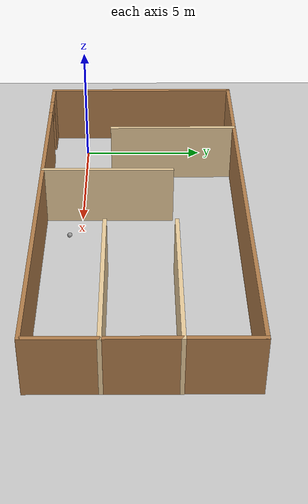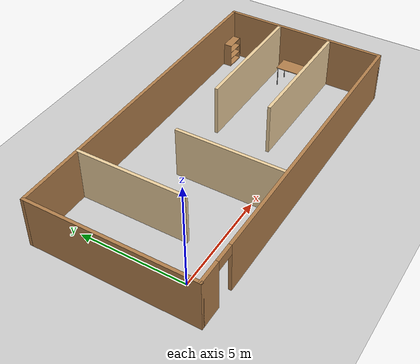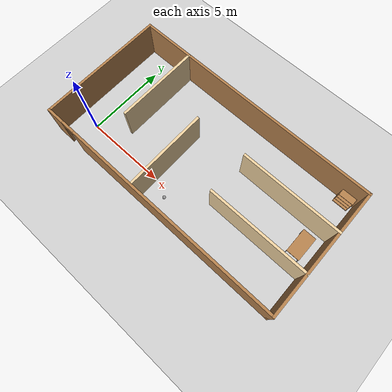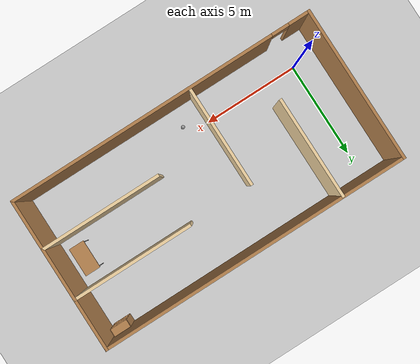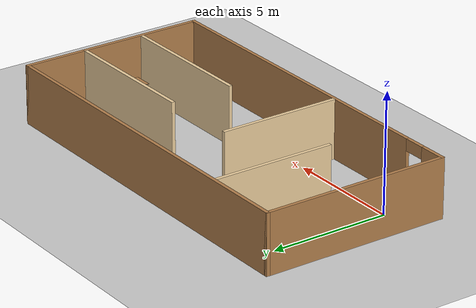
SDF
<sdf version="1.7">
 <world name="default">
  <model name="ground_plane">
   <static>1</static>
   <link name="link">
    <collision name="collision">
     <geometry><plane><normal>0 0 1</normal><size>100 100</size></plane></geometry>
     <surface>
      <contact><collide_bitmask>65535</collide_bitmask></contact>
      <friction><ode><mu>100</mu><mu2>50</mu2></ode></friction>
     </surface>
    </collision>
    <visual name="visual">
     <cast_shadows>0</cast_shadows>
     <geometry><plane><normal>0 0 1</normal><size>100 100</size></plane></geometry>
     <material>
      <script><uri>file://media/materials/scripts/gazebo.material</uri><name>Gazebo/Grey</name></script>
     </material>
    </visual>
   </link>
  </model>
  <model name="building">
   <pose>6.54224 2.40718 0 0 -0 0</pose>
   <link name="Wall_0">
    <collision name="Wall_0_Collision">
     <geometry><box><size>8 0.15 2.5</size></box></geometry>
     <pose>0 0 1.25 0 -0 0</pose>
    </collision>
    <visual name="Wall_0_Visual">
     <pose>0 0 1.25 0 -0 0</pose>
     <geometry><box><size>8 0.15 2.5</size></box></geometry>
     <material>
      <script><uri>file://media/materials/scripts/gazebo.material</uri><name>Gazebo/Wood</name></script>
      <ambient>1 1 1 1</ambient>
     </material>
     <meta><layer>0</layer></meta>
    </visual>
    <pose>-7.92584 0 0 0 -0 -1.5708</pose>
   </link>
   <link name="Wall_1">
    <pose>-0.000844 -3.925 0 0 -0 0</pose>
    <visual name="Wall_1_Visual_0">
     <pose>-7.41662 0 1.25 0 -0 0</pose>
     <geometry><box><size>1.16677 0.15 2.5</size></box></geometry>
     <material>
      <script><uri>file://media/materials/scripts/gazebo.material</uri><name>Gazebo/Wood</name></script>
      <ambient>1 1 1 1</ambient>
     </material>
     <meta><layer>0</layer></meta>
    </visual>
    <collision name="Wall_1_Collision_0">
     <geometry><box><size>1.16677 0.15 2.5</size></box></geometry>
     <pose>-7.41662 0 1.25 0 -0 0</pose>
    </collision>
    <visual name="Wall_1_Visual_1">
     <pose>1.03338 0 1.25 0 -0 0</pose>
     <geometry><box><size>13.9332 0.15 2.5</size></box></geometry>
     <material>
      <script><uri>file://media/materials/scripts/gazebo.material</uri><name>Gazebo/Wood</name></script>
      <ambient>1 1 1 1</ambient>
     </material>
     <meta><layer>0</layer></meta>
    </visual>
    <collision name="Wall_1_Collision_1">
     <geometry><box><size>13.9332 0.15 2.5</size></box></geometry>
     <pose>1.03338 0 1.25 0 -0 0</pose>
    </collision>
    <visual name="Wall_1_Visual_2">
     <pose>-6.38323 0 2.25 0 -0 0</pose>
     <geometry><box><size>0.9 0.15 0.5</size></box></geometry>
     <material>
      <script><uri>file://media/materials/scripts/gazebo.material</uri><name>Gazebo/Wood</name></script>
      <ambient>1 1 1 1</ambient>
     </material>
     <meta><layer>0</layer></meta>
    </visual>
    <collision name="Wall_1_Collision_2">
     <geometry><box><size>0.9 0.15 0.5</size></box></geometry>
     <pose>-6.38323 0 2.25 0 -0 0</pose>
    </collision>
   </link>
   <link name="Wall_10">
    <collision name="Wall_10_Collision">
     <geometry><box><size>6.25 0.15 2.5</size></box></geometry>
     <pose>0 0 1.25 0 -0 0</pose>
    </collision>
    <visual name="Wall_10_Visual">
     <pose>0 0 1.25 0 -0 0</pose>
     <geometry><box><size>6.25 0.15 2.5</size></box></geometry>
     <material>
      <script><uri>file://media/materials/scripts/gazebo.material</uri><name>Gazebo/Grey</name></script>
      <ambient>0.921569 0.807843 0.615686 1</ambient>
     </material>
     <meta><layer>0</layer></meta>
    </visual>
    <pose>4.87584 1.28992 0 0 -0 3.14159</pose>
   </link>
   <link name="Wall_14">
    <collision name="Wall_14_Collision">
     <geometry><box><size>6.25 0.15 2.5</size></box></geometry>
     <pose>0 0 1.25 0 -0 0</pose>
    </collision>
    <visual name="Wall_14_Visual">
     <pose>0 0 1.25 0 -0 0</pose>
     <geometry><box><size>6.25 0.15 2.5</size></box></geometry>
     <material>
      <script><uri>file://media/materials/scripts/gazebo.material</uri><name>Gazebo/Grey</name></script>
      <ambient>0.921569 0.807843 0.615686 1</ambient>
     </material>
     <meta><layer>0</layer></meta>
    </visual>
    <pose>4.87584 -1.3701 0 0 -0 3.14159</pose>
   </link>
   <link name="Wall_3">
    <collision name="Wall_3_Collision">
     <geometry><box><size>16 0.15 2.5</size></box></geometry>
     <pose>0 0 1.25 0 -0 0</pose>
    </collision>
    <visual name="Wall_3_Visual">
     <pose>0 0 1.25 0 -0 0</pose>
     <geometry><box><size>16 0.15 2.5</size></box></geometry>
     <material>
      <script><uri>file://media/materials/scripts/gazebo.material</uri><name>Gazebo/Wood</name></script>
      <ambient>1 1 1 1</ambient>
     </material>
     <meta><layer>0</layer></meta>
    </visual>
    <pose>-0.000844 3.925 0 0 -0 0</pose>
   </link>
   <link name="Wall_4">
    <collision name="Wall_4_Collision">
     <geometry><box><size>8 0.15 2.5</size></box></geometry>
     <pose>0 0 1.25 0 -0 0</pose>
    </collision>
    <visual name="Wall_4_Visual">
     <pose>0 0 1.25 0 -0 0</pose>
     <geometry><box><size>8 0.15 2.5</size></box></geometry>
     <material>
      <script><uri>file://media/materials/scripts/gazebo.material</uri><name>Gazebo/Wood</name></script>
      <ambient>1 1 1 1</ambient>
     </material>
     <meta><layer>0</layer></meta>
    </visual>
    <pose>7.92416 0 0 0 -0 -1.5708</pose>
   </link>
   <link name="Wall_6">
    <collision name="Wall_6_Collision">
     <geometry><box><size>5.25 0.15 2.5</size></box></geometry>
     <pose>0 0 1.25 0 -0 0</pose>
    </collision>
    <visual name="Wall_6_Visual">
     <pose>0 0 1.25 0 -0 0</pose>
     <geometry><box><size>5.25 0.15 2.5</size></box></geometry>
     <material>
      <script><uri>file://media/materials/scripts/gazebo.material</uri><name>Gazebo/Grey</name></script>
      <ambient>0.921569 0.807843 0.615686 1</ambient>
     </material>
     <meta><layer>0</layer></meta>
    </visual>
    <pose>-4.68496 1.33279 0 0 -0 -1.5708</pose>
   </link>
   <link name="Wall_8">
    <collision name="Wall_8_Collision">
     <geometry><box><size>5.25 0.15 2.5</size></box></geometry>
     <pose>0 0 1.25 0 -0 0</pose>
    </collision>
    <visual name="Wall_8_Visual">
     <pose>0 0 1.25 0 -0 0</pose>
     <geometry><box><size>5.25 0.15 2.5</size></box></geometry>
     <material>
      <script><uri>file://media/materials/scripts/gazebo.material</uri><name>Gazebo/Grey</name></script>
      <ambient>0.921569 0.807843 0.615686 1</ambient>
     </material>
     <meta><layer>0</layer></meta>
    </visual>
    <pose>-1.51723 -1.34711 0 0 -0 1.5708</pose>
   </link>
   <static>1</static>
  </model>
  <model name="my_ball">
   <link name="link">
    <inertial>
     <mass>1.00007</mass>
     <inertia>
      <ixx>0.00400027</ixx>
      <ixy>0</ixy>
      <ixz>0</ixz>
      <iyy>0.00400027</iyy>
      <iyz>0</iyz>
      <izz>0.00400027</izz>
     </inertia>
    </inertial>
    <visual name="visual">
     <geometry><sphere><radius>0.1</radius></sphere></geometry>
     <material>
      <script><name>Gazebo/Grey</name><uri>file://media/materials/scripts/gazebo.material</uri></script>
      <shader type="pixel"><normal_map>__default__</normal_map></shader>
      <ambient>1 1 1 1</ambient>
      <diffuse>1 1 1 1</diffuse>
      <specular>1 1 1 1</specular>
      <emissive>1 1 1 1</emissive>
     </material>
    </visual>
    <collision name="collision">
     <geometry><sphere><radius>0.1</radius></sphere></geometry>
     <surface>
      <friction>
       <ode><mu>1</mu><mu2>1</mu2><fdir1>0 0 0</fdir1><slip1>0</slip1><slip2>0</slip2></ode>
       <torsional>
        <coefficient>1</coefficient>
        <patch_radius>0</patch_radius>
        <surface_radius>0</surface_radius>
        <use_patch_radius>1</use_patch_radius>
        <ode><slip>0</slip></ode>
       </torsional>
      </friction>
      <bounce><restitution_coefficient>0</restitution_coefficient><threshold>1e+06</threshold></bounce>
      <contact>
       <collide_without_contact>0</collide_without_contact>
       <collide_without_contact_bitmask>1</collide_without_contact_bitmask>
       <collide_bitmask>1</collide_bitmask>
       <ode>
        <soft_cfm>0</soft_cfm>
        <soft_erp>0.2</soft_erp>
        <kp>1e+13</kp>
        <kd>1</kd>
        <max_vel>0.01</max_vel>
        <min_depth>0</min_depth>
       </ode>
       <bullet>
        <split_impulse>1</split_impulse>
        <split_impulse_penetration_threshold>-0.01</split_impulse_penetration_threshold>
        <soft_cfm>0</soft_cfm>
        <soft_erp>0.2</soft_erp>
        <kp>1e+13</kp>
        <kd>1</kd>
       </bullet>
      </contact>
     </surface>
    </collision>
   </link>
   <static>0</static>
   <pose>6.17372 -0.474667 0.1 0 -0 0</pose>
  </model>
  <model name="bookshelf_0_clone">
   <static>1</static>
   <link name="link">
    <inertial><mass>1</mass></inertial>
    <collision name="back">
     <pose>0 0.005 0.6 0 -0 0</pose>
     <geometry><box><size>0.9 0.01 1.2</size></box></geometry>
    </collision>
    <visual name="visual1">
     <pose>0 0.005 0.6 0 -0 0</pose>
     <geometry><box><size>0.9 0.01 1.2</size></box></geometry>
     <material>
      <script><uri>file://media/materials/scripts/gazebo.material</uri><name>Gazebo/Wood</name></script>
     </material>
    </visual>
    <collision name="left_side">
     <pose>0.45 -0.195 0.6 0 -0 0</pose>
     <geometry><box><size>0.02 0.4 1.2</size></box></geometry>
    </collision>
    <visual name="visual2">
     <pose>0.45 -0.195 0.6 0 -0 0</pose>
     <geometry><box><size>0.02 0.4 1.2</size></box></geometry>
     <material>
      <script><uri>file://media/materials/scripts/gazebo.material</uri><name>Gazebo/Wood</name></script>
     </material>
    </visual>
    <collision name="right_side">
     <pose>-0.45 -0.195 0.6 0 -0 0</pose>
     <geometry><box><size>0.02 0.4 1.2</size></box></geometry>
    </collision>
    <visual name="visual3">
     <pose>-0.45 -0.195 0.6 0 -0 0</pose>
     <geometry><box><size>0.02 0.4 1.2</size></box></geometry>
     <material>
      <script><uri>file://media/materials/scripts/gazebo.material</uri><name>Gazebo/Wood</name></script>
     </material>
    </visual>
    <collision name="bottom">
     <pose>0 -0.195 0.03 0 -0 0</pose>
     <geometry><box><size>0.88 0.4 0.06</size></box></geometry>
    </collision>
    <visual name="visual4">
     <pose>0 -0.195 0.03 0 -0 0</pose>
     <geometry><box><size>0.88 0.4 0.06</size></box></geometry>
     <material>
      <script><uri>file://media/materials/scripts/gazebo.material</uri><name>Gazebo/Wood</name></script>
     </material>
    </visual>
    <collision name="top">
     <pose>0 -0.195 1.19 0 -0 0</pose>
     <geometry><box><size>0.88 0.4 0.02</size></box></geometry>
    </collision>
    <visual name="visual5">
     <pose>0 -0.195 1.19 0 -0 0</pose>
     <geometry><box><size>0.88 0.4 0.02</size></box></geometry>
     <material>
      <script><uri>file://media/materials/scripts/gazebo.material</uri><name>Gazebo/Wood</name></script>
     </material>
    </visual>
    <collision name="low_shelf">
     <pose>0 -0.195 0.43 0 -0 0</pose>
     <geometry><box><size>0.88 0.4 0.02</size></box></geometry>
    </collision>
    <visual name="visual6">
     <pose>0 -0.195 0.43 0 -0 0</pose>
     <geometry><box><size>0.88 0.4 0.02</size></box></geometry>
     <material>
      <script><uri>file://media/materials/scripts/gazebo.material</uri><name>Gazebo/Wood</name></script>
     </material>
    </visual>
    <collision name="high_shelf">
     <pose>0 -0.195 0.8 0 -0 0</pose>
     <geometry><box><size>0.88 0.4 0.02</size></box></geometry>
    </collision>
    <visual name="visual7">
     <pose>0 -0.195 0.8 0 -0 0</pose>
     <geometry><box><size>0.88 0.4 0.02</size></box></geometry>
     <material>
      <script><uri>file://media/materials/scripts/gazebo.material</uri><name>Gazebo/Wood</name></script>
     </material>
    </visual>
   </link>
   <pose>13.7875 6.2305 0 0 -0 0</pose>
  </model>
  <model name="table">
   <static>1</static>
   <link name="link">
    <collision name="surface">
     <pose>0 0 1 0 -0 0</pose>
     <geometry><box><size>1.5 0.8 0.03</size></box></geometry>
     <surface><friction><ode><mu>0.6</mu><mu2>0.6</mu2></ode></friction></surface>
    </collision>
    <visual name="visual1">
     <pose>0 0 1 0 -0 0</pose>
     <geometry><box><size>1.5 0.8 0.03</size></box></geometry>
     <material>
      <script><uri>file://media/materials/scripts/gazebo.material</uri><name>Gazebo/Wood</name></script>
     </material>
    </visual>
    <collision name="front_left_leg">
     <pose>0.68 0.38 0.5 0 -0 0</pose>
     <geometry><cylinder><radius>0.02</radius><length>1</length></cylinder></geometry>
    </collision>
    <visual name="front_left_leg">
     <pose>0.68 0.38 0.5 0 -0 0</pose>
     <geometry><cylinder><radius>0.02</radius><length>1</length></cylinder></geometry>
     <material>
      <script><uri>file://media/materials/scripts/gazebo.material</uri><name>Gazebo/Grey</name></script>
     </material>
    </visual>
    <collision name="front_right_leg">
     <pose>0.68 -0.38 0.5 0 -0 0</pose>
     <geometry><cylinder><radius>0.02</radius><length>1</length></cylinder></geometry>
    </collision>
    <visual name="front_right_leg">
     <pose>0.68 -0.38 0.5 0 -0 0</pose>
     <geometry><cylinder><radius>0.02</radius><length>1</length></cylinder></geometry>
     <material>
      <script><uri>file://media/materials/scripts/gazebo.material</uri><name>Gazebo/Grey</name></script>
     </material>
    </visual>
    <collision name="back_right_leg">
     <pose>-0.68 -0.38 0.5 0 -0 0</pose>
     <geometry><cylinder><radius>0.02</radius><length>1</length></cylinder></geometry>
    </collision>
    <visual name="back_right_leg">
     <pose>-0.68 -0.38 0.5 0 -0 0</pose>
     <geometry><cylinder><radius>0.02</radius><length>1</length></cylinder></geometry>
     <material>
      <script><uri>file://media/materials/scripts/gazebo.material</uri><name>Gazebo/Grey</name></script>
     </material>
    </visual>
    <collision name="back_left_leg">
     <pose>-0.68 0.38 0.5 0 -0 0</pose>
     <geometry><cylinder><radius>0.02</radius><length>1</length></cylinder></geometry>
    </collision>
    <visual name="back_left_leg">
     <pose>-0.68 0.38 0.5 0 -0 0</pose>
     <geometry><cylinder><radius>0.02</radius><length>1</length></cylinder></geometry>
     <material>
      <script><uri>file://media/materials/scripts/gazebo.material</uri><name>Gazebo/Grey</name></script>
     </material>
    </visual>
   </link>
   <pose>13.4931 2.35899 0 0 -0 1.57109</pose>
  </model>
 </world>
</sdf>
